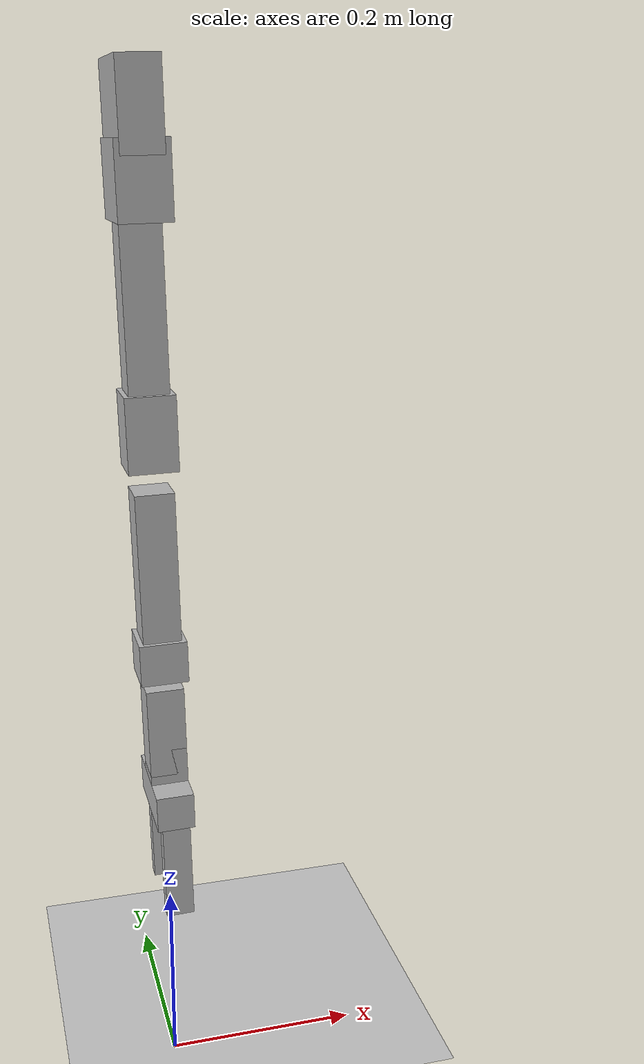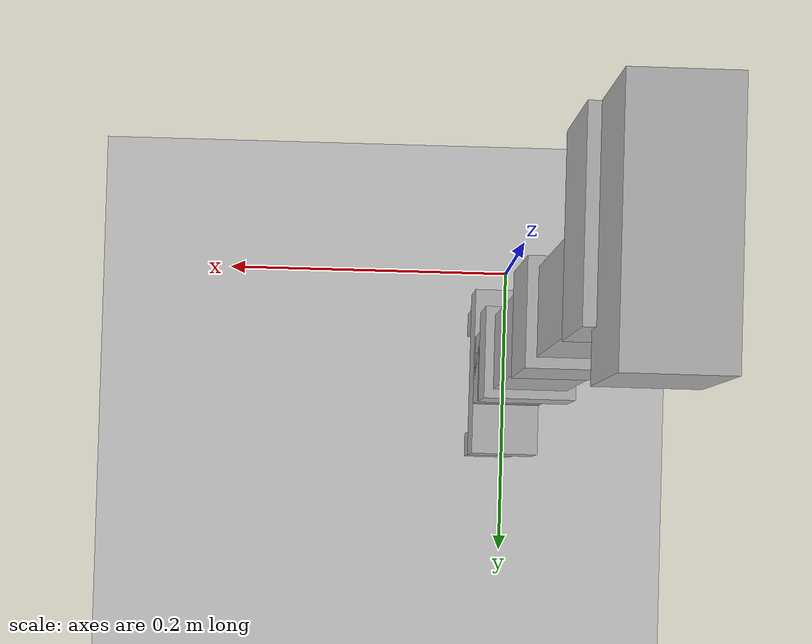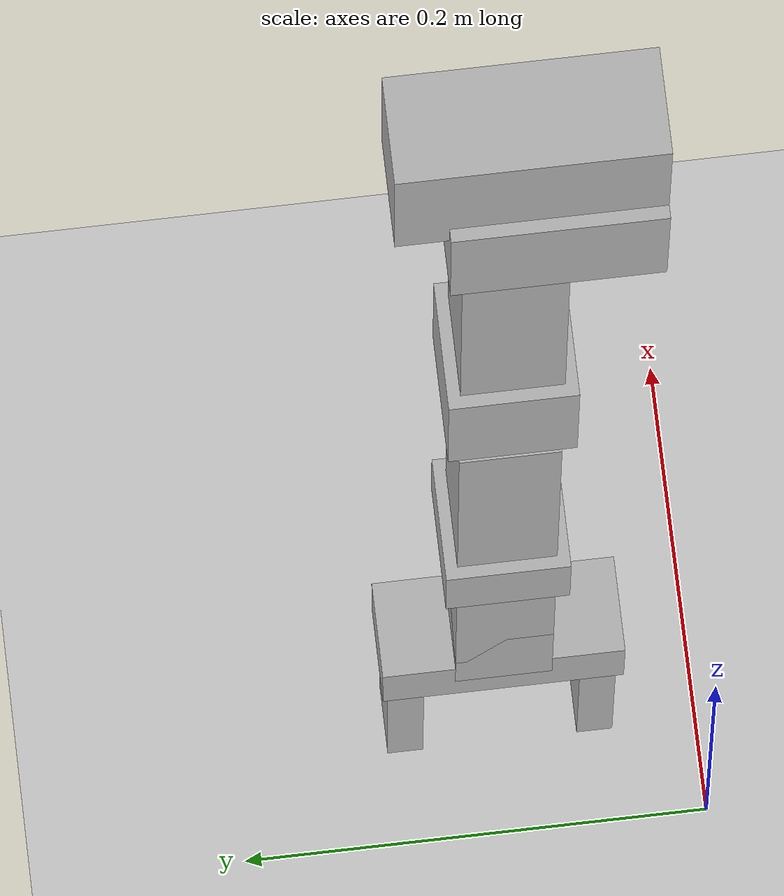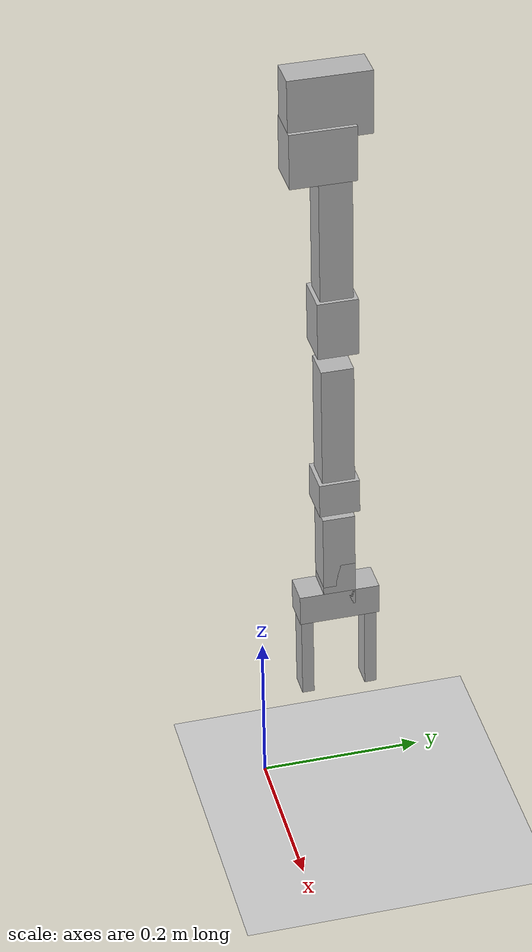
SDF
<sdf version="1.6">
 <world name="default">
  <light name="sun" type="directional">
   <pose>0 0 10 0 -0 0</pose>
   <diffuse>0.8 0.8 0.8 1</diffuse>
   <specular>0.2 0.2 0.2 1</specular>
   <attenuation>
    <range>1000</range>
    <constant>0.9</constant>
    <linear>0.01</linear>
    <quadratic>0.001</quadratic>
   </attenuation>
   <direction>-0.5 0.1 -0.9</direction>
  </light>
  <model name="ground_plane">
   <static>1</static>
   <link name="link">
    <collision name="collision">
     <geometry><plane><normal>0 0 1</normal><size>100 100</size></plane></geometry>
     <surface><friction><ode><mu>100</mu><mu2>50</mu2></ode></friction></surface>
    </collision>
    <visual name="visual">
     <cast_shadows>0</cast_shadows>
     <geometry><plane><normal>0 0 1</normal><size>100 100</size></plane></geometry>
     <material>
      <script><uri>file://media/materials/scripts/gazebo.material</uri><name>Gazebo/Grey</name></script>
     </material>
    </visual>
   </link>
  </model>
  <gravity>0 0 -9.8</gravity>
  <magnetic_field>6e-06 2.3e-05 -4.2e-05</magnetic_field>
  <atmosphere type="adiabatic"/>
  <physics name="default_physics" default="0" type="ode">
   <max_step_size>0.001</max_step_size>
   <real_time_factor>1</real_time_factor>
   <real_time_update_rate>1000</real_time_update_rate>
  </physics>
  <scene><ambient>0.4 0.4 0.4 1</ambient><background>0.7 0.7 0.7 1</background><shadows>1</shadows></scene>
  <spherical_coordinates>
   <surface_model>EARTH_WGS84</surface_model>
   <latitude_deg>0</latitude_deg>
   <longitude_deg>0</longitude_deg>
   <elevation>0</elevation>
   <heading_deg>0</heading_deg>
  </spherical_coordinates>
  <model name="Justina">
   <link name="shoulders_left_link">
    <inertial>
     <pose>0.035 0.085 0 0 -0 0</pose>
     <mass>0.1</mass>
     <inertia><ixx>0.1</ixx><ixy>0</ixy><ixz>0</ixz><iyy>0.1</iyy><iyz>0</iyz><izz>0.1</izz></inertia>
    </inertial>
    <visual name="shoulders_left_link_visual">
     <pose>0.035 0.085 0 0 -0 0</pose>
     <geometry><box><size>0.08 0.1 0.04</size></box></geometry>
     <material><shader type="pixel"><normal_map>__default__</normal_map></shader></material>
    </visual>
   </link>
   <link name="left_arm_link1">
    <pose>0.055 0.09 0 0 -0 0</pose>
    <inertial>
     <pose>0.0403 -0.015 0 0 -0 0</pose>
     <mass>0.35</mass>
     <inertia><ixx>0.3</ixx><ixy>0</ixy><ixz>0</ixz><iyy>0.3</iyy><iyz>0</iyz><izz>0.3</izz></inertia>
    </inertial>
    <visual name="left_arm_link1_visual">
     <pose>0.0403 -0.015 0 0 -0 0</pose>
     <geometry><box><size>0.07 0.08 0.05</size></box></geometry>
     <material><shader type="pixel"/></material>
    </visual>
   </link>
   <link name="left_arm_link2">
    <pose>0.1153 0.09 0 0 -0 0</pose>
    <inertial>
     <pose>0.105 0 0 0 -0 0</pose>
     <mass>0.2</mass>
     <inertia><ixx>0.3</ixx><ixy>0</ixy><ixz>0</ixz><iyy>0.3</iyy><iyz>0</iyz><izz>0.3</izz></inertia>
    </inertial>
    <visual name="left_arm_link2_visual">
     <pose>0.105 0 0 0 -0 0</pose>
     <geometry><box><size>0.21 0.04 0.04</size></box></geometry>
     <material><shader type="pixel"/></material>
    </visual>
   </link>
   <link name="left_arm_link3">
    <pose>0.1153 0.09 0 0 -0 0</pose>
    <inertial>
     <pose>0.21 0 0 0 -0 0</pose>
     <mass>0.18</mass>
     <inertia><ixx>0.3</ixx><ixy>0</ixy><ixz>0</ixz><iyy>0.3</iyy><iyz>0</iyz><izz>0.3</izz></inertia>
    </inertial>
    <visual name="left_arm_link3_visual">
     <pose>0.21 0 0 0 -0 0</pose>
     <geometry><box><size>0.075 0.05 0.05</size></box></geometry>
     <material><shader type="pixel"/></material>
    </visual>
   </link>
   <link name="left_arm_link4">
    <pose>0.3853 0.09 -0 0 -0 0</pose>
    <inertial>
     <pose>0.09 0 0 0 -0 0</pose>
     <mass>0.18</mass>
     <inertia><ixx>0.3</ixx><ixy>0</ixy><ixz>0</ixz><iyy>0.3</iyy><iyz>0</iyz><izz>0.3</izz></inertia>
    </inertial>
    <visual name="left_arm_link4_visual">
     <pose>0.09 0 0 0 -0 0</pose>
     <geometry><box><size>0.18 0.04 0.04</size></box></geometry>
     <material><shader type="pixel"/></material>
    </visual>
   </link>
   <link name="left_arm_link5">
    <pose>0.3853 0.09 -0 0 -0 0</pose>
    <inertial>
     <pose>0.18 0 0 0 -0 0</pose>
     <mass>0.18</mass>
     <inertia><ixx>0.3</ixx><ixy>0</ixy><ixz>0</ixz><iyy>0.3</iyy><iyz>0</iyz><izz>0.3</izz></inertia>
    </inertial>
    <visual name="left_arm_link5_visual">
     <pose>0.18 0 0 0 -0 0</pose>
     <geometry><box><size>0.045 0.05 0.05</size></box></geometry>
     <material><shader type="pixel"/></material>
    </visual>
   </link>
   <link name="left_arm_link6">
    <pose>0.5979 0.09 -0 0 -0 0</pose>
    <inertial>
     <pose>0.05 0 0 0 -0 0</pose>
     <mass>0.15</mass>
     <inertia><ixx>0.3</ixx><ixy>0</ixy><ixz>0</ixz><iyy>0.3</iyy><iyz>0</iyz><izz>0.3</izz></inertia>
    </inertial>
    <visual name="left_arm_link6_visual">
     <pose>0.05 0 0 0 -0 0</pose>
     <geometry><box><size>0.1 0.04 0.04</size></box></geometry>
     <material><shader type="pixel"/></material>
    </visual>
   </link>
   <link name="left_arm_link7">
    <pose>0.5979 0.09 -0 0 -0 0</pose>
    <inertial>
     <pose>0.1 0 0 0 -0 0</pose>
     <mass>0.15</mass>
     <inertia><ixx>0.3</ixx><ixy>0</ixy><ixz>0</ixz><iyy>0.3</iyy><iyz>0</iyz><izz>0.3</izz></inertia>
    </inertial>
    <visual name="left_arm_link7_visual">
     <pose>0.1 0 0 0 -0 0</pose>
     <geometry><box><size>0.06 0.04 0.04</size></box></geometry>
     <material><shader type="pixel"/></material>
    </visual>
    <visual name="left_arm_link7_fixed_joint_lump__left_arm_grip_center_visual_1">
     <pose>0.13 0 0 0 -0 0</pose>
     <geometry><box><size>0.04 0.1 0.04</size></box></geometry>
     <material><shader type="pixel"/></material>
    </visual>
    <visual name="left_arm_link7_fixed_joint_lump__left_arm_grip_left_visual_2">
     <pose>0.195 -0.04 0 0 -0 0</pose>
     <geometry><box><size>0.13 0.015 0.03</size></box></geometry>
     <material><shader type="pixel"/></material>
    </visual>
    <visual name="left_arm_link7_fixed_joint_lump__left_arm_grip_right_visual_3">
     <pose>0.195 0.04 0 0 -0 0</pose>
     <geometry><box><size>0.13 0.015 0.03</size></box></geometry>
     <material><shader type="pixel"/></material>
    </visual>
   </link>
   <joint name="la_1_joint" type="revolute">
    <parent>shoulders_left_link</parent>
    <child>left_arm_link1</child>
    <axis>
     <xyz>0 -1 0</xyz>
     <use_parent_model_frame>1</use_parent_model_frame>
     <limit><lower>-3</lower><upper>3</upper><effort>1000</effort><velocity>10</velocity></limit>
     <dynamics>
      <spring_reference>0</spring_reference>
      <spring_stiffness>0</spring_stiffness>
      <damping>1.5</damping>
      <friction>0</friction>
     </dynamics>
    </axis>
    <physics>
     <ode><limit><cfm>0</cfm><erp>0.2</erp></limit><suspension><cfm>0</cfm><erp>0.2</erp></suspension></ode>
    </physics>
   </joint>
   <joint name="la_2_joint" type="revolute">
    <parent>left_arm_link1</parent>
    <child>left_arm_link2</child>
    <axis>
     <xyz>0 0 -1</xyz>
     <use_parent_model_frame>1</use_parent_model_frame>
     <limit><lower>-3</lower><upper>3</upper><effort>1000</effort><velocity>10</velocity></limit>
     <dynamics>
      <spring_reference>0</spring_reference>
      <spring_stiffness>0</spring_stiffness>
      <damping>1.5</damping>
      <friction>0</friction>
     </dynamics>
    </axis>
    <physics>
     <ode><limit><cfm>0</cfm><erp>0.2</erp></limit><suspension><cfm>0</cfm><erp>0.2</erp></suspension></ode>
    </physics>
   </joint>
   <joint name="la_3_joint" type="revolute">
    <parent>left_arm_link2</parent>
    <child>left_arm_link3</child>
    <axis>
     <xyz>1 0 0</xyz>
     <use_parent_model_frame>1</use_parent_model_frame>
     <limit><lower>-3</lower><upper>3</upper><effort>1000</effort><velocity>10</velocity></limit>
     <dynamics>
      <spring_reference>0</spring_reference>
      <spring_stiffness>0</spring_stiffness>
      <damping>1.5</damping>
      <friction>0</friction>
     </dynamics>
    </axis>
    <physics>
     <ode><limit><cfm>0</cfm><erp>0.2</erp></limit><suspension><cfm>0</cfm><erp>0.2</erp></suspension></ode>
    </physics>
   </joint>
   <joint name="la_4_joint" type="revolute">
    <parent>left_arm_link3</parent>
    <child>left_arm_link4</child>
    <axis>
     <xyz>0 -1 0</xyz>
     <use_parent_model_frame>1</use_parent_model_frame>
     <limit><lower>-3</lower><upper>3</upper><effort>1000</effort><velocity>10</velocity></limit>
     <dynamics>
      <spring_reference>0</spring_reference>
      <spring_stiffness>0</spring_stiffness>
      <damping>1.5</damping>
      <friction>0</friction>
     </dynamics>
    </axis>
    <physics>
     <ode><limit><cfm>0</cfm><erp>0.2</erp></limit><suspension><cfm>0</cfm><erp>0.2</erp></suspension></ode>
    </physics>
   </joint>
   <joint name="la_5_joint" type="revolute">
    <parent>left_arm_link4</parent>
    <child>left_arm_link5</child>
    <axis>
     <xyz>1 0 0</xyz>
     <use_parent_model_frame>1</use_parent_model_frame>
     <limit><lower>-3</lower><upper>3</upper><effort>1000</effort><velocity>10</velocity></limit>
     <dynamics>
      <spring_reference>0</spring_reference>
      <spring_stiffness>0</spring_stiffness>
      <damping>1.5</damping>
      <friction>0</friction>
     </dynamics>
    </axis>
    <physics>
     <ode><limit><cfm>0</cfm><erp>0.2</erp></limit><suspension><cfm>0</cfm><erp>0.2</erp></suspension></ode>
    </physics>
   </joint>
   <joint name="la_6_joint" type="revolute">
    <parent>left_arm_link5</parent>
    <child>left_arm_link6</child>
    <axis>
     <xyz>0 -1 0</xyz>
     <use_parent_model_frame>1</use_parent_model_frame>
     <limit><lower>-3</lower><upper>3</upper><effort>1000</effort><velocity>10</velocity></limit>
     <dynamics>
      <spring_reference>0</spring_reference>
      <spring_stiffness>0</spring_stiffness>
      <damping>1.5</damping>
      <friction>0</friction>
     </dynamics>
    </axis>
    <physics>
     <ode><limit><cfm>0</cfm><erp>0.2</erp></limit><suspension><cfm>0</cfm><erp>0.2</erp></suspension></ode>
    </physics>
   </joint>
   <joint name="la_7_joint" type="revolute">
    <parent>left_arm_link6</parent>
    <child>left_arm_link7</child>
    <axis>
     <xyz>1 0 0</xyz>
     <use_parent_model_frame>1</use_parent_model_frame>
     <limit><lower>-3</lower><upper>3</upper><effort>1000</effort><velocity>10</velocity></limit>
     <dynamics>
      <spring_reference>0</spring_reference>
      <spring_stiffness>0</spring_stiffness>
      <damping>1.5</damping>
      <friction>0</friction>
     </dynamics>
    </axis>
    <physics>
     <ode><limit><cfm>0</cfm><erp>0.2</erp></limit><suspension><cfm>0</cfm><erp>0.2</erp></suspension></ode>
    </physics>
   </joint>
   <static>0</static>
   <pose>0 0 1 0 1.55 0</pose>
  </model>
 </world>
</sdf>
